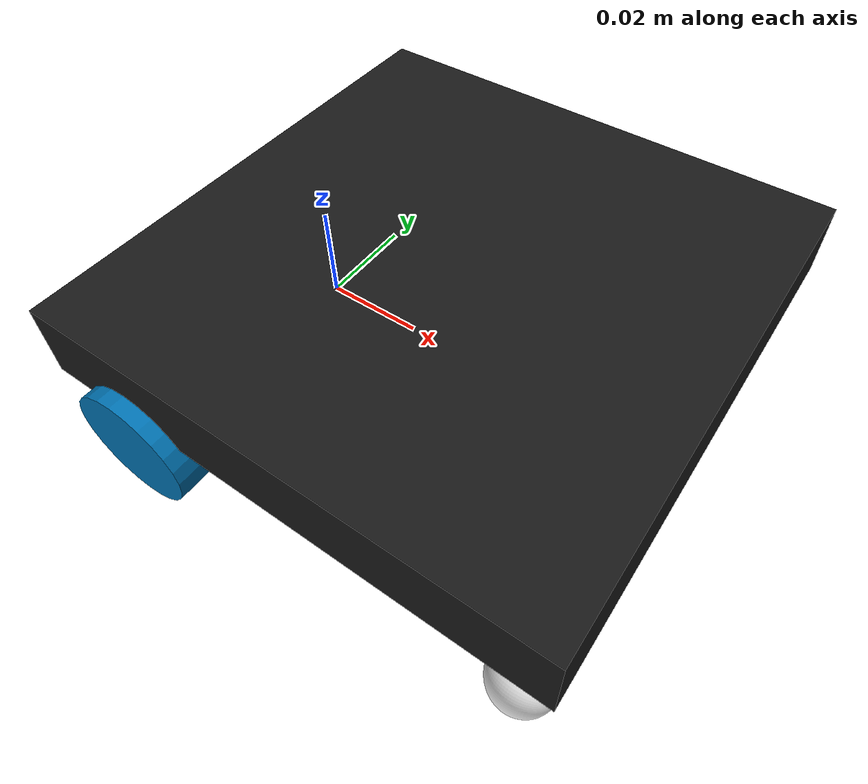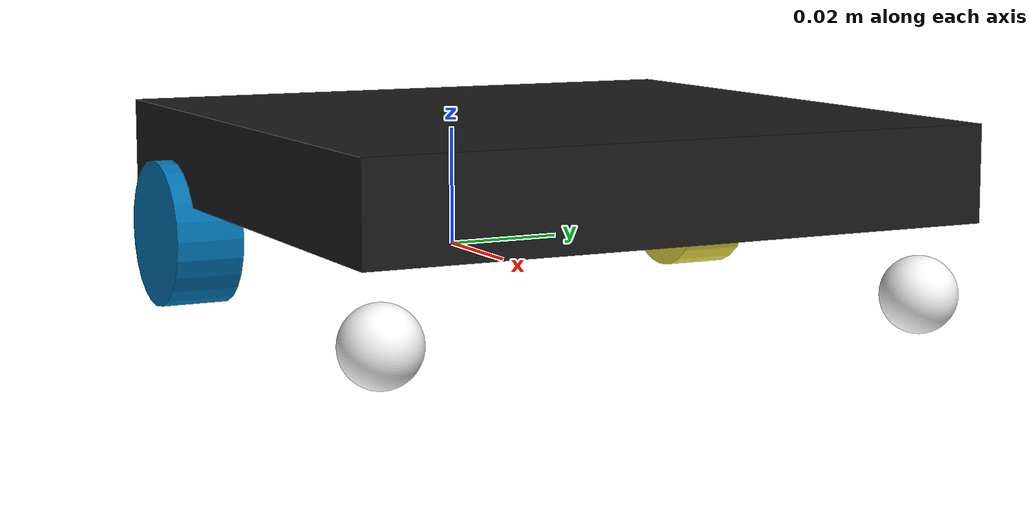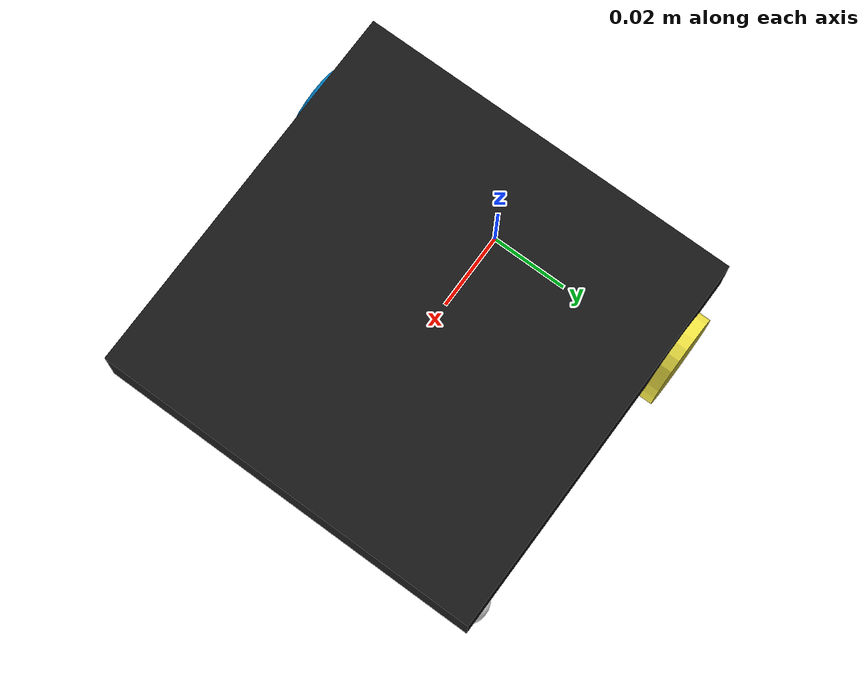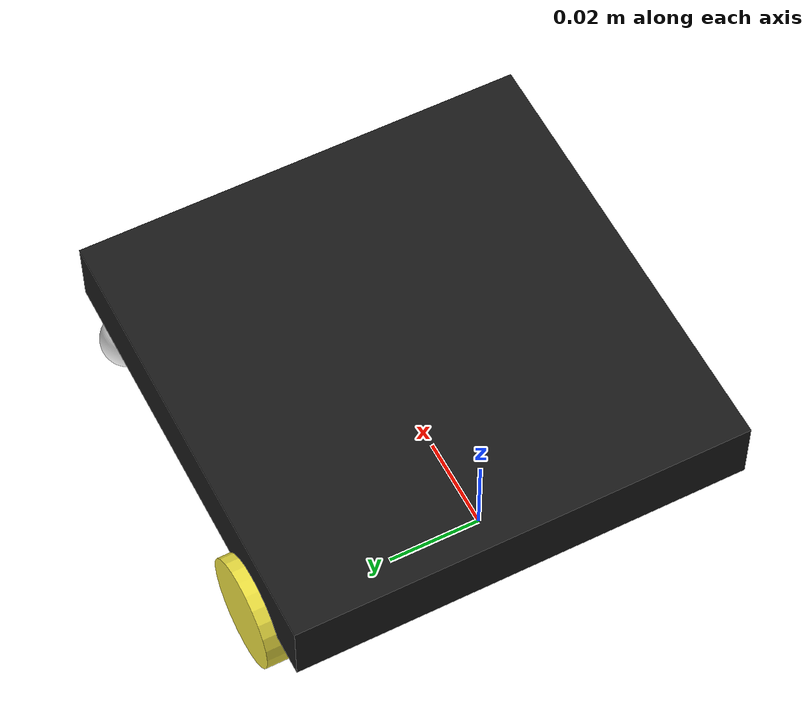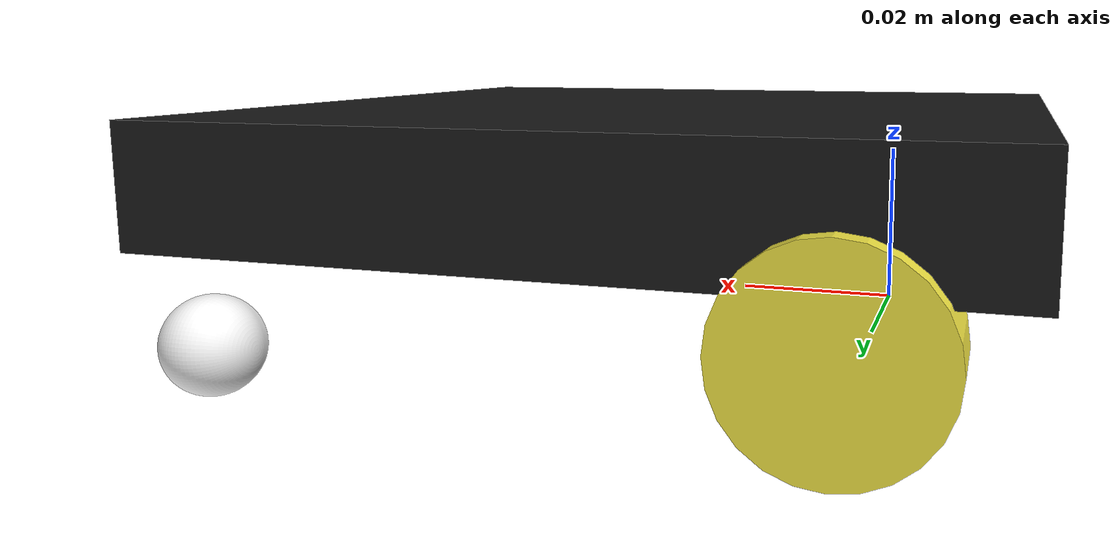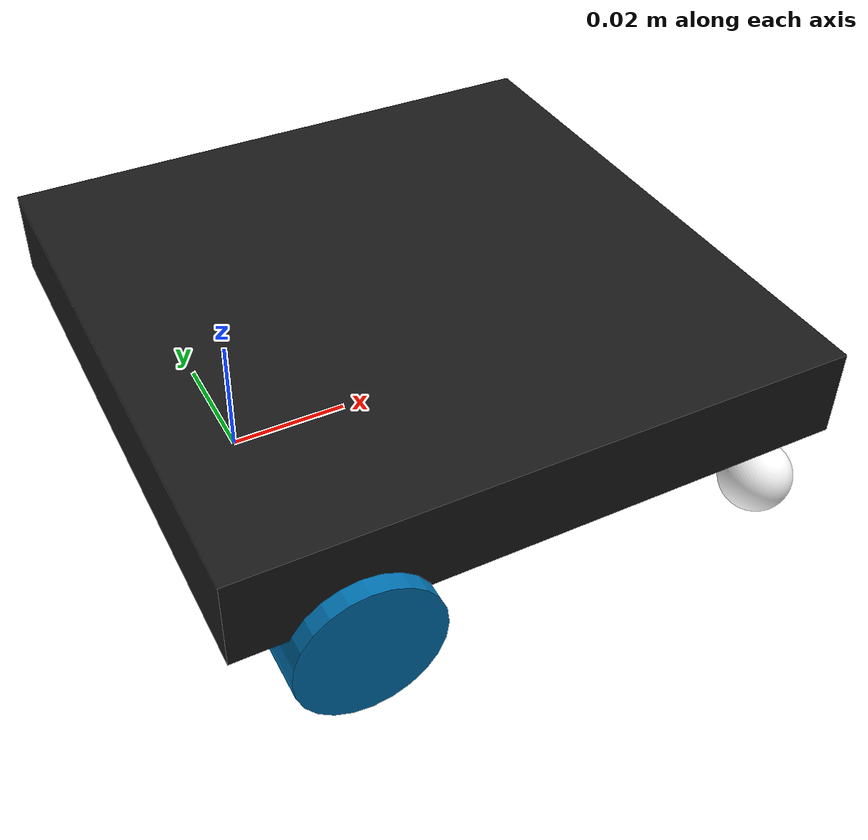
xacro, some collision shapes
<?xml version="1.0"?>
<robot xmlns:xacro="http://www.ros.org/wiki/xacro">

    <xacro:include filename="inertial_moment_calc.xacro" />

    <!-- BASE LINK -->
    <link name="base_link">
        <xacro:body mass="0.00001" d="0.0000010" h="0.000003" w="0.00003">
            <origin xyz="0.0 0.0 0.0" rpy="0.0 0.0 0.0" />
        </xacro:body>
    </link>

    <gazebo reference="base_link">
        <sensor name="imu_sensor" type="imu">
            <always_on>1</always_on>
            <update_rate>1</update_rate>
            <visualize>true</visualize>
            <topic>imu</topic>
        </sensor>
    </gazebo>

    <link name="base_footprint">
    </link>

     <joint name="base_footprint_joint" type="fixed">
        <parent link="base_link" />
        <child link="base_footprint" />
        <origin rpy="0 0.0 0" xyz="0 0.0 0.0" />
    </joint>

    <!-- CHASSIS -->
    <link name="chassis">
        <xacro:body mass="0.360" d="0.125" h="0.028" w="0.1256">
            <origin xyz="0 0.014 0.0" rpy="0.0 0.0 0.0" />
        </xacro:body>
        <collision>
            <origin rpy="0.0 0.0 0.0" xyz="0 0.018 0" />
            <geometry>
                <box size="0.1 0.015 0.1" />
            </geometry>
        </collision>
        <visual>
            <origin rpy="0.0 0.0 0.0" xyz="0.0 0.0 0.0" />
            <geometry>
                <mesh filename="file://$(find rae_description)/urdf/models/rae.stl" scale="1.0 1.0 1.0" />
            </geometry>
            <material name="mat">
                <lighting>1</lighting>
                <color rgba="0.1 0.1 0.1 1.0" />
                <shader type='pixel' />
                <emissive>0 0 0 1</emissive>
            </material>
            <transparency>0</transparency>
            <cast_shadows>1</cast_shadows>
        </visual>
    </link>

    <joint name="base_chassis_joint" type="fixed">
        <parent link="base_link" />
        <child link="chassis" />
        <origin rpy="1.57 0.0 1.57" xyz="0.0307 0.0 0.0" />
    </joint>

    <!-- LEFT WHEEL -->
    <link name="left_wheel">
        <xacro:wheels mass="0.008" h="0.011" r="0.0119">
            <origin xyz="0.0 0.0 -0.0055" rpy="0.0 0.0 0.0" />
        </xacro:wheels>
        <collision>
            <origin rpy="0.0 0.0 0.0" xyz="0.0 0.0 -0.0055" />
            <geometry>
                <cylinder length="0.011" radius="0.0119" />
            </geometry>
        </collision>
        <visual>
            <origin rpy="0.0 0.0 0.0" xyz="0.0 0.0 -0.0055" />
            <geometry>
                <cylinder length="0.011" radius="0.0119" />
            </geometry>
        </visual>
    </link>

    <joint name="left_wheel_joint" type="continuous">
        <origin rpy="1.57 0.0 0.00 " xyz="0.0 0.042 0.0052" />
        <parent link="base_link" />
        <child link="left_wheel" />
        <axis rpy="0 0 0" xyz="0 0 -1" />
    </joint>

    <gazebo reference="left_wheel">
        <mu1>100.0</mu1>
        <mu2>100.0</mu2>
    </gazebo>

    <!-- RIGHT WHEEL -->
    <link name="right_wheel">
        <xacro:wheels mass="0.008" h="0.011" r="0.0119">
            <origin xyz="0.0 0.0 -0.0055" rpy="0.0 0.0 0.0" />
        </xacro:wheels>
        <collision>
            <origin rpy="0.0 0.0 0.0" xyz="0.0 0.0 -0.0055" />
            <geometry>
                <cylinder length="0.011" radius="0.0119" />
            </geometry>
        </collision>
        <visual>
            <origin rpy="0.0 0.0 0.0" xyz="0.0 0.0 -0.0055" />
            <geometry>
                <cylinder length="0.011" radius="0.0119" />
            </geometry>
        </visual>
    </link>

    <joint name='right_wheel_joint' type='continuous'>
        <origin rpy="-1.57 0.0 0.0 " xyz="0.0 -0.042 0.0052" />
        <parent link="base_link" />
        <child link="right_wheel" />
        <axis rpy="0 0 0" xyz="0 0 1" />
    </joint>

    <gazebo reference="right_wheel">
        <mu1>100.0</mu1>
        <mu2>100.0</mu2>
    </gazebo>

    <!-- LEFT CASTER WHEEL -->
    <link name="left_caster_wheel">
        <xacro:caster_wheels mass="0.008" r="0.005">
            <origin xyz="0.0 0.0 0.0" rpy="0.0 0.0 0.0" />
        </xacro:caster_wheels>
        <collision>
            <origin rpy="0.0 0.0 0.0" xyz="0.0 0.0 0.0" />
            <geometry>
                <sphere radius="0.006" />
            </geometry>
        </collision>
        <visual>
            <origin rpy="0.0 0.0 0.0" xyz="0.0 0.0 0.0" />
            <geometry>
                <mesh filename="file://$(find rae_description)/urdf/models/caster-wheel.stl" scale="1.0 1.0 1.0" />
            </geometry>
            <material name="mat">
                <lighting>1</lighting>
                <color rgba="1.0 1.0 1.0 1.0" />
                <shader type='pixel' />
                <emissive>0 0 0 1</emissive>
            </material>
            <transparency>0</transparency>
            <cast_shadows>1</cast_shadows>
        </visual>
    </link>

    <joint name="left_caster_wheel_joint" type="fixed">
        <parent link="base_link" />
        <child link="left_caster_wheel" />
        <origin rpy="0.0 0.0 0.0" xyz="0.0735 0.0445 -0.001" />
    </joint>

    <gazebo reference="left_caster_wheel">
        <mu1>0.001</mu1>
        <mu2>0.001</mu2>
    </gazebo>

    <!-- RIGHT CASTER WHEEL -->
    <link name="right_caster_wheel">
        <xacro:caster_wheels mass="0.008" r="0.005">
            <origin xyz="0.0 0.0 0.0" rpy="0.0 0.0 0.0" />
        </xacro:caster_wheels>
        <collision>
            <origin rpy="0.0 0.0 0.0" xyz="0.0 0.0 0.0" />
            <geometry>
                <sphere radius="0.006" />
            </geometry>
        </collision>
        <visual>
            <origin rpy="0.0 0.0 0.0" xyz="0.0 0.0 0.0" />
            <geometry>
                <mesh filename="file://$(find rae_description)/urdf/models/caster-wheel.stl" scale="1.0 1.0 1.0" />
            </geometry>
            <material name="mat">
                <lighting>1</lighting>
                <color rgba="1.0 1.0 1.0 1.0" />
                <shader type='pixel' />
                <emissive>0 0 0 1</emissive>
            </material>
            <transparency>0</transparency>
            <cast_shadows>1</cast_shadows>
        </visual>
    </link>

    <joint name="right_caster_wheel_joint" type="fixed">
        <parent link="base_link" />
        <child link="right_caster_wheel" />
        <origin rpy="0.0 0.0 0.0" xyz="0.0735 -0.0445 -0.001" />
    </joint>

    <gazebo reference="right_caster_wheel">
        <mu1>0.001</mu1>
        <mu2>0.001</mu2>
    </gazebo>
</robot>

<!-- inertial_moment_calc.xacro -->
<robot xmlns:xacro="http://www.ros.org/wiki/xacro" >

    <xacro:macro name="body" params="mass d h w *origin">
        <inertial>
            <xacro:insert_block name="origin"/>
            <mass value="${mass}" />
            <inertia
                ixx="${(1/12) * mass * (h*h+w*w)}"
                ixy="0.0"
                ixz="0.0"
                iyy="${(1/12) * mass * (d*d+w*w)}"
                iyz="0.0"
                izz="${(1/12) * mass * (d*d+h*h)}" />
        </inertial>
    </xacro:macro>

    <xacro:macro name="wheels" params="mass h r *origin">
        <inertial>
            <xacro:insert_block name="origin"/>
            <mass value="${mass}" />
            <inertia
                ixx="${(1/2) * mass * (r*r)}"  ixy="0.0" ixz="0.0"
                iyy="${(1/12) * mass * (3*r*r + h*h)}" iyz="0.0"
                izz="${(1/12) * mass * (3*r*r + h*h)}"/>
        </inertial>
    </xacro:macro>

    <xacro:macro name="caster_wheels" params="mass r *origin">
        <inertial>
            <xacro:insert_block name="origin"/>
            <mass value="${mass}" />
            <inertia
                ixx="${(2/5) * mass * (r*r)}"  ixy="0.0" ixz="0.0"
                iyy="${(2/5) * mass * (r*r)}" iyz="0.0"
                izz="${(2/5) * mass * (r*r)}"/>
        </inertial>
    </xacro:macro>

</robot>
